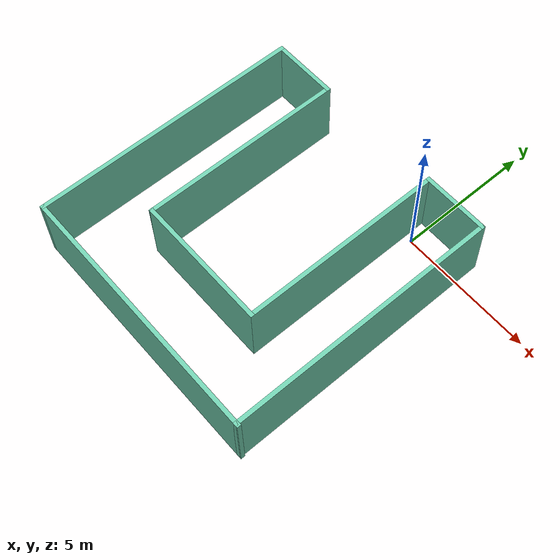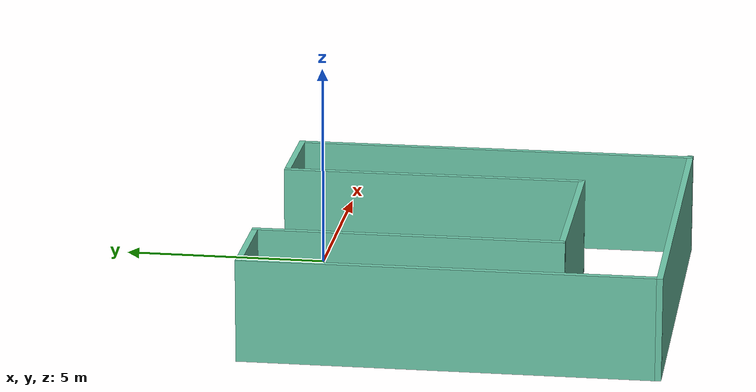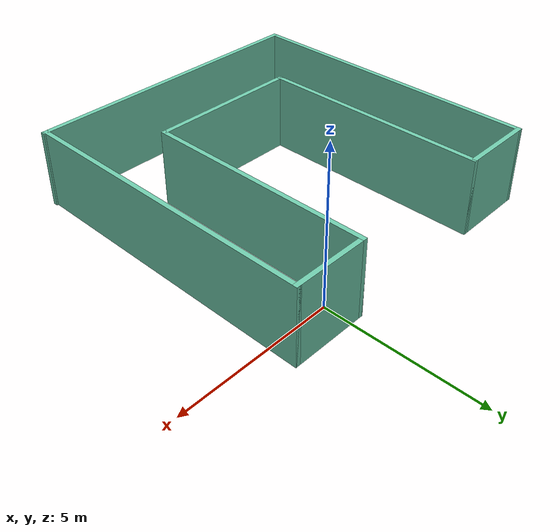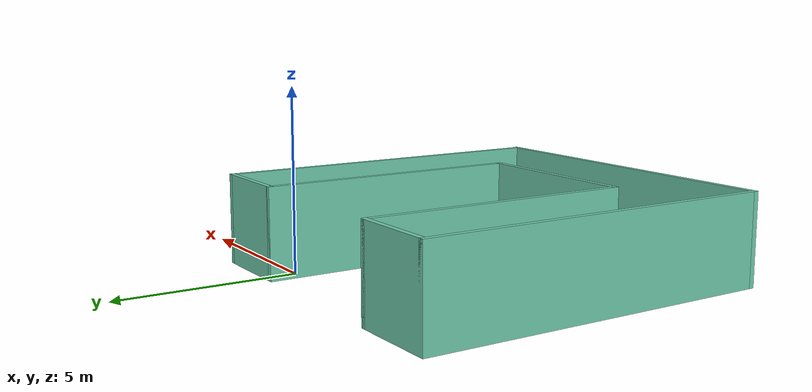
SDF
<?xml version='1.0'?>
<sdf version='1.6'>
  <model name='mybuilding'>
    <pose frame=''>-2.75117 -4.08229 0 0 -0 0</pose>
    <link name='Wall_22'>
      <collision name='Wall_22_Collision'>
        <geometry>
          <box>
            <size>10 0.15 2.5</size>
          </box>
        </geometry>
        <pose frame=''>0 0 1.25 0 -0 0</pose>
      </collision>
      <visual name='Wall_22_Visual'>
        <pose frame=''>0 0 1.25 0 -0 0</pose>
        <geometry>
          <box>
            <size>10 0.15 2.5</size>
          </box>
        </geometry>
        <material>
          <script>
            <uri>file://media/materials/scripts/gazebo.material</uri>
            <name>Gazebo/Grey</name>
          </script>
          <ambient>0.435294 0.796078 0.67451 1</ambient>
        </material>
        <meta>
          <layer>0</layer>
        </meta>
      </visual>
      <pose frame=''>-4.8 0 0 0 -0 1.5708</pose>
    </link>
    <link name='Wall_23'>
      <collision name='Wall_23_Collision'>
        <geometry>
          <box>
            <size>2.5 0.15 2.5</size>
          </box>
        </geometry>
        <pose frame=''>0 0 1.25 0 -0 0</pose>
      </collision>
      <visual name='Wall_23_Visual'>
        <pose frame=''>0 0 1.25 0 -0 0</pose>
        <geometry>
          <box>
            <size>2.5 0.15 2.5</size>
          </box>
        </geometry>
        <material>
          <script>
            <uri>file://media/materials/scripts/gazebo.material</uri>
            <name>Gazebo/Grey</name>
          </script>
          <ambient>0.435294 0.796078 0.67451 1</ambient>
        </material>
        <meta>
          <layer>0</layer>
        </meta>
      </visual>
      <pose frame=''>-3.625 4.925 0 0 -0 0</pose>
    </link>
    <link name='Wall_24'>
      <collision name='Wall_24_Collision'>
        <geometry>
          <box>
            <size>7.5 0.15 2.5</size>
          </box>
        </geometry>
        <pose frame=''>0 0 1.25 0 -0 0</pose>
      </collision>
      <visual name='Wall_24_Visual'>
        <pose frame=''>0 0 1.25 0 -0 0</pose>
        <geometry>
          <box>
            <size>7.5 0.15 2.5</size>
          </box>
        </geometry>
        <material>
          <script>
            <uri>file://media/materials/scripts/gazebo.material</uri>
            <name>Gazebo/Grey</name>
          </script>
          <ambient>0.435294 0.796078 0.67451 1</ambient>
        </material>
        <meta>
          <layer>0</layer>
        </meta>
      </visual>
      <pose frame=''>-2.45 1.25 0 0 0 -1.5708</pose>
    </link>
    <link name='Wall_25'>
      <collision name='Wall_25_Collision'>
        <geometry>
          <box>
            <size>5 0.15 2.5</size>
          </box>
        </geometry>
        <pose frame=''>0 0 1.25 0 -0 0</pose>
      </collision>
      <visual name='Wall_25_Visual'>
        <pose frame=''>0 0 1.25 0 -0 0</pose>
        <geometry>
          <box>
            <size>5 0.15 2.5</size>
          </box>
        </geometry>
        <material>
          <script>
            <uri>file://media/materials/scripts/gazebo.material</uri>
            <name>Gazebo/Grey</name>
          </script>
          <ambient>0.435294 0.796078 0.67451 1</ambient>
        </material>
        <meta>
          <layer>0</layer>
        </meta>
      </visual>
      <pose frame=''>-0.025 -2.425 0 0 -0 0</pose>
    </link>
    <link name='Wall_26'>
      <collision name='Wall_26_Collision'>
        <geometry>
          <box>
            <size>7.5 0.15 2.5</size>
          </box>
        </geometry>
        <pose frame=''>0 0 1.25 0 -0 0</pose>
      </collision>
      <visual name='Wall_26_Visual'>
        <pose frame=''>0 0 1.25 0 -0 0</pose>
        <geometry>
          <box>
            <size>7.5 0.15 2.5</size>
          </box>
        </geometry>
        <material>
          <script>
            <uri>file://media/materials/scripts/gazebo.material</uri>
            <name>Gazebo/Grey</name>
          </script>
          <ambient>0.435294 0.796078 0.67451 1</ambient>
        </material>
        <meta>
          <layer>0</layer>
        </meta>
      </visual>
      <pose frame=''>2.4 1.25 0 0 -0 1.5708</pose>
    </link>
    <link name='Wall_27'>
      <collision name='Wall_27_Collision'>
        <geometry>
          <box>
            <size>2.5 0.15 2.5</size>
          </box>
        </geometry>
        <pose frame=''>0 0 1.25 0 -0 0</pose>
      </collision>
      <visual name='Wall_27_Visual'>
        <pose frame=''>0 0 1.25 0 -0 0</pose>
        <geometry>
          <box>
            <size>2.5 0.15 2.5</size>
          </box>
        </geometry>
        <material>
          <script>
            <uri>file://media/materials/scripts/gazebo.material</uri>
            <name>Gazebo/Grey</name>
          </script>
          <ambient>0.435294 0.796078 0.67451 1</ambient>
        </material>
        <meta>
          <layer>0</layer>
        </meta>
      </visual>
      <pose frame=''>3.575 4.925 0 0 -0 0</pose>
    </link>
    <link name='Wall_28'>
      <collision name='Wall_28_Collision'>
        <geometry>
          <box>
            <size>10 0.15 2.5</size>
          </box>
        </geometry>
        <pose frame=''>0 0 1.25 0 -0 0</pose>
      </collision>
      <visual name='Wall_28_Visual'>
        <pose frame=''>0 0 1.25 0 -0 0</pose>
        <geometry>
          <box>
            <size>10 0.15 2.5</size>
          </box>
        </geometry>
        <material>
          <script>
            <uri>file://media/materials/scripts/gazebo.material</uri>
            <name>Gazebo/Grey</name>
          </script>
          <ambient>0.435294 0.796078 0.67451 1</ambient>
        </material>
        <meta>
          <layer>0</layer>
        </meta>
      </visual>
      <pose frame=''>4.75 0 0 0 0 -1.5708</pose>
    </link>
    <link name='Wall_3'>
      <collision name='Wall_3_Collision'>
        <geometry>
          <box>
            <size>9.75 0.15 2.5</size>
          </box>
        </geometry>
        <pose frame=''>0 0 1.25 0 -0 0</pose>
      </collision>
      <visual name='Wall_3_Visual'>
        <pose frame=''>0 0 1.25 0 -0 0</pose>
        <geometry>
          <box>
            <size>9.75 0.15 2.5</size>
          </box>
        </geometry>
        <material>
          <script>
            <uri>file://media/materials/scripts/gazebo.material</uri>
            <name>Gazebo/Grey</name>
          </script>
          <ambient>0.435294 0.796078 0.67451 1</ambient>
        </material>
        <meta>
          <layer>0</layer>
        </meta>
      </visual>
      <pose frame=''>0 -4.925 0 0 -0 0</pose>
    </link>
    <static>1</static>
  </model>
</sdf>
